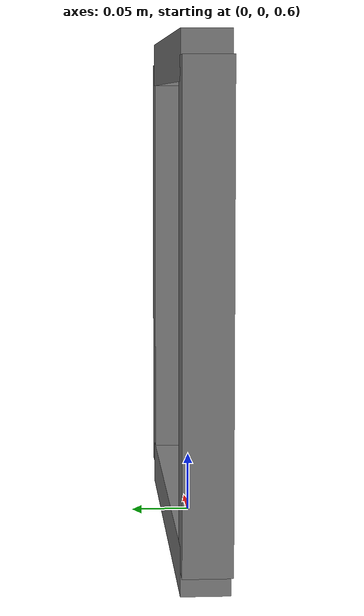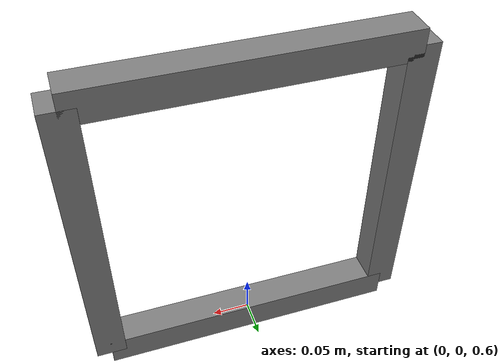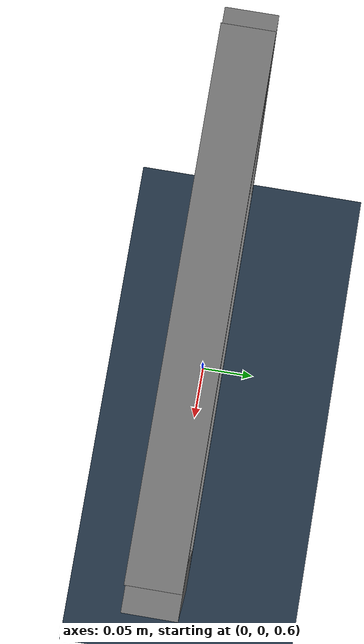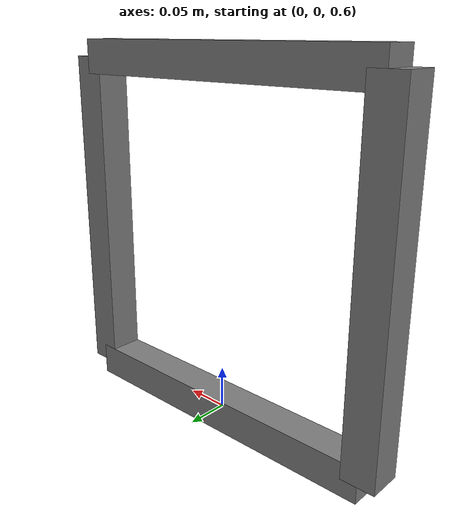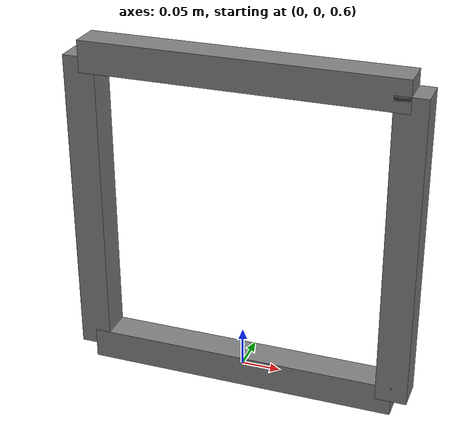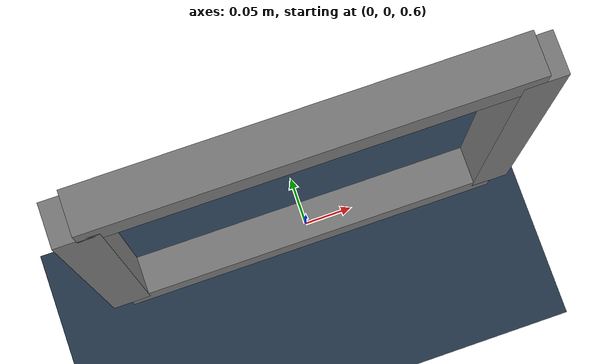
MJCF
<mujoco model="four_bars">
    <default>
        <joint type="hinge" frictionloss="0.1" damping='2' />
    </default>

    <asset>
        <texture type="skybox" builtin="gradient" rgb1="1 1 1" rgb2=".6 .8 1" width="256" height="256" />
        <texture name="texplane" type="2d" builtin="checker" rgb1=".2 .3 .4" rgb2=".1 0.15 0.2" width="512" height="512"/>
        <material name="matplane" texture="texplane" texrepeat="1 1" texuniform="true" />
    </asset>

    <worldbody>
        <light directional="true" diffuse=".4 .4 .4" specular="0.1 0.1 0.1" pos="0 0 3" dir="0 0 -1" />
        <geom name="ground" type="plane" size="0 0 1" pos="0 0 0" quat="1 0 0 0" material="matplane" condim="1" />

        <body name="b0" pos="0 0 1">
            <geom type="box" size="0.2 0.02 0.02"/>
            <body name="b1" pos="-0.2 0 -0.2" euler="0 90 0">
                <geom type="box" size="0.2 0.02 0.02"/>
                <joint name="j0" type="hinge" pos="-0.2 0 0" axis="0 1 0" />
                <body name="b3" pos="0.2 0 0.2" euler="0 -90 0">
                    <geom type="box" size="0.2 0.02 0.02" />
                    <joint name="j3" type="hinge" pos="-0.2 0 0" axis="0 1 0" />
                </body>
            </body>
            <body name="b2" pos="0.2 0 -0.2" euler="0 90 0">
                <geom type="box" size="0.2 0.02 0.02" />
                <joint name="j2" type="hinge" pos="-0.2 0 0" axis="0 1 0" />
            </body>
        </body>
    </worldbody>

    <contact>
        <exclude name="e0" body1="b0" body2="b1" />
        <exclude name="e1" body1="b0" body2="b2" />
        <exclude name="e2" body1="b3" body2="b2" />
    </contact>

    <equality>
        <connect name="c0" body1="b2" body2="b3" anchor="0.2 0 0" />
    </equality>

    <actuator>
        <position joint="j0" ctrllimited="true" ctrlrange="-1.0 1.0" kp="30"/>
        <position joint="j2" ctrllimited="true" ctrlrange="-1.0 1.0" kp="30"/>
        <position joint="j3" ctrllimited="true" ctrlrange="-1.0 1.0" kp="30"/>
    </actuator>
</mujoco>
